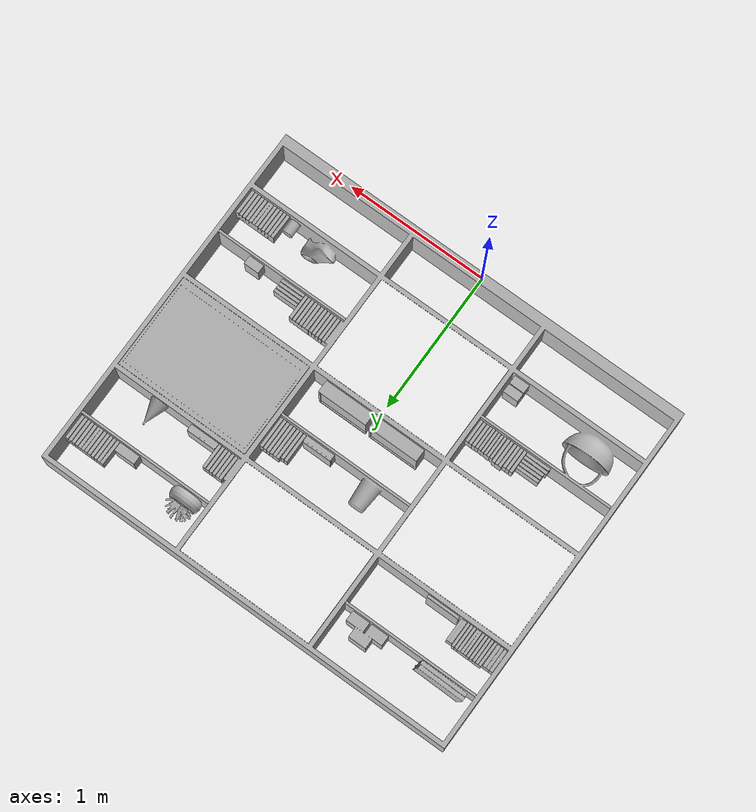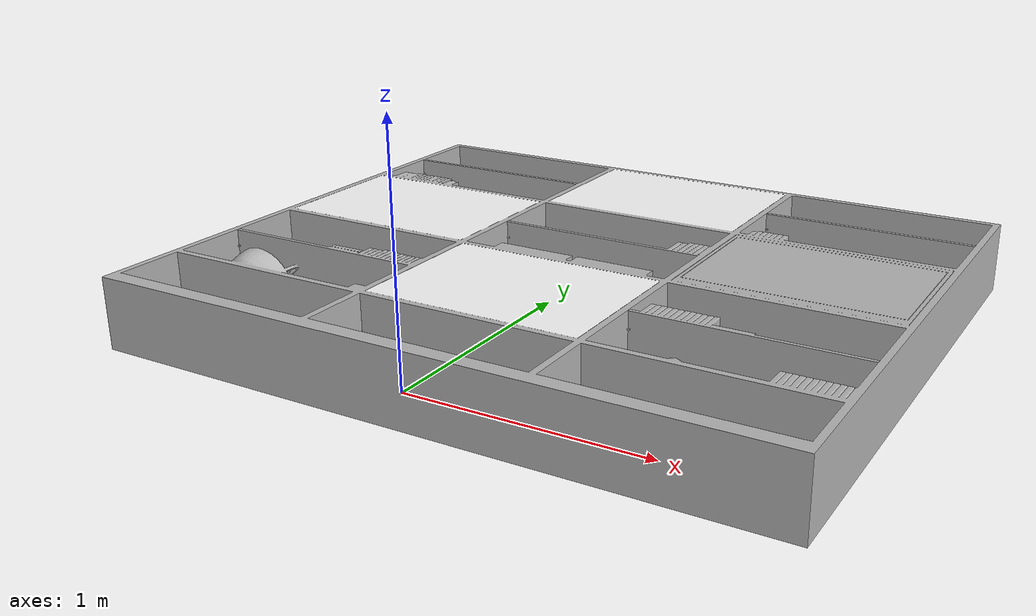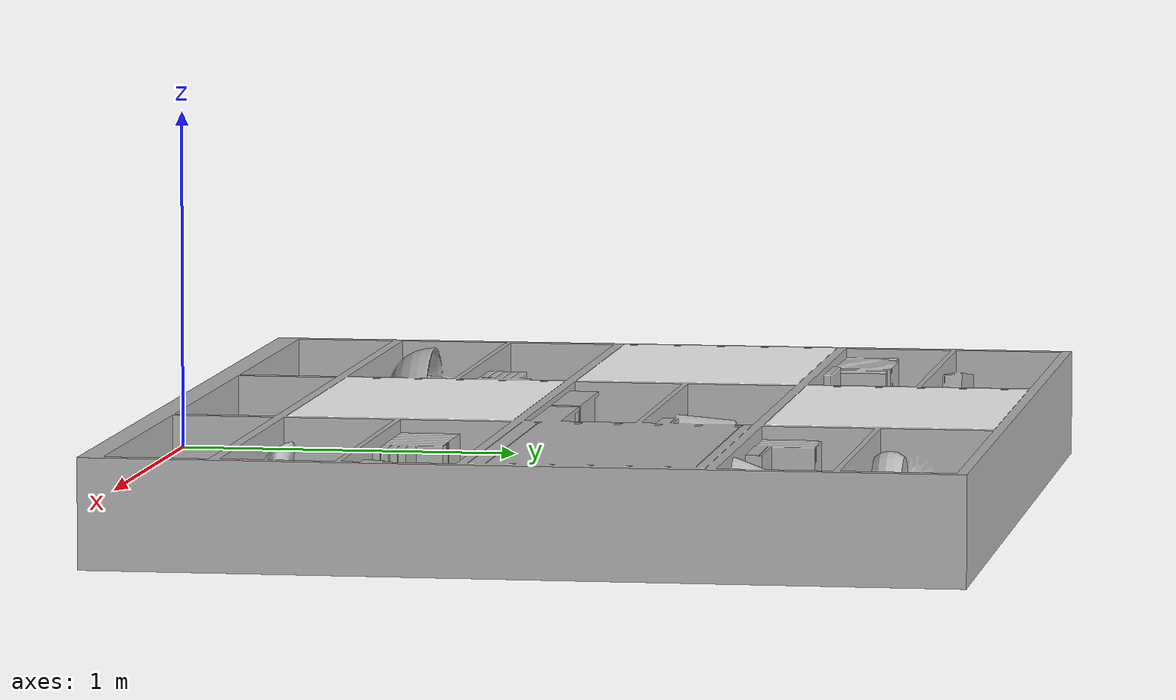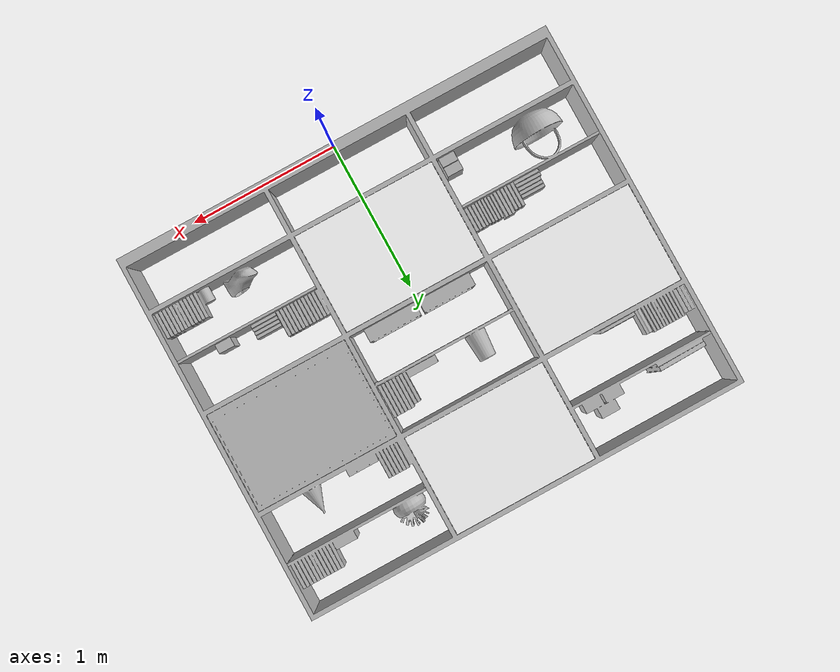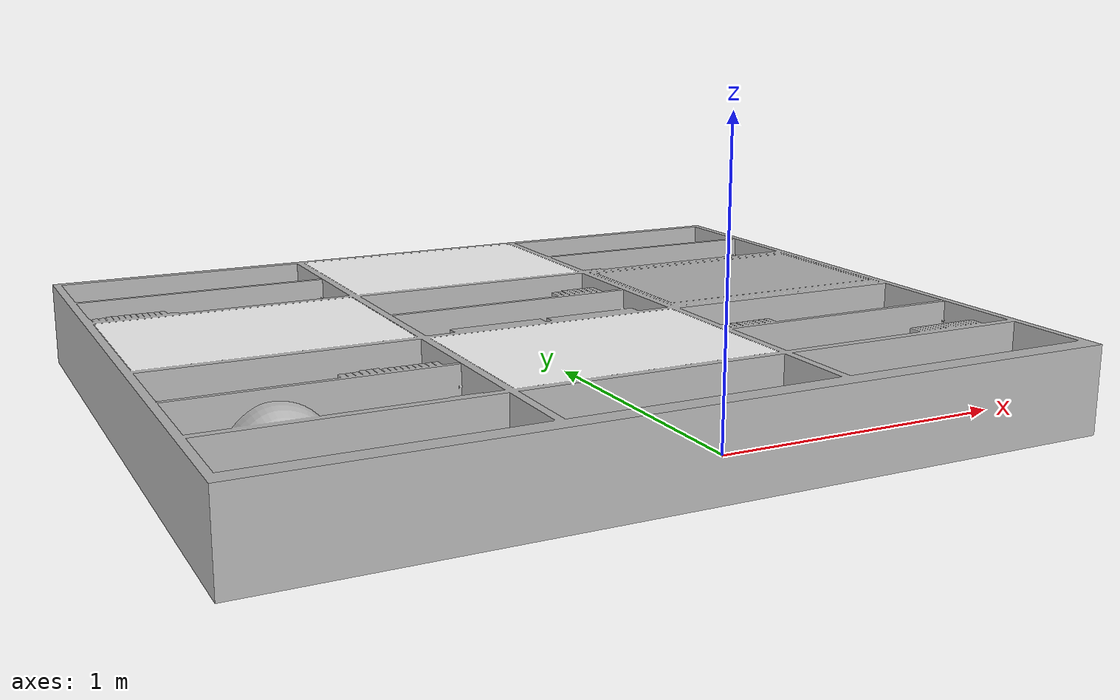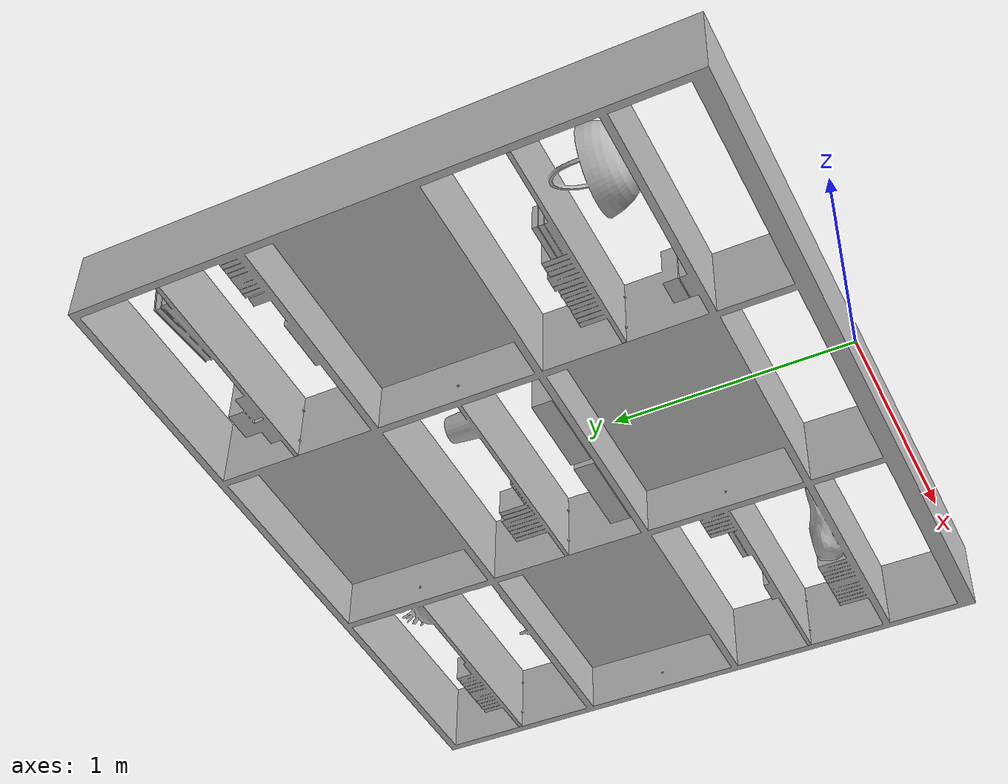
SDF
<?xml version="1.0" ?>
<sdf version="1.4">
<!-- Origin
 x, y: Center of each beam
 z: Bottom
-->
    <model name="bookshelf">
      <static>true</static>
      <link name="body">
        <visual name="visual">
          <geometry>
            <mesh><uri>model://bookshelf/shelf1/shelf1.dae</uri></mesh>
          </geometry>
        </visual>
        <collision name="bookshelf">
          <pose>0 1.22 0 0 0 0</pose>
          <geometry>
            <box>
              <size>3.0 2.44 0.32</size> <!-- Order of this is y, z, x. Not sure if this is correct, but works. -->
            </box>
          </geometry>
          <surface>
            <friction>
              <ode>
                <mu>100</mu>
                <mu2>50</mu2>
              </ode>
            </friction>
          </surface>
        </collision>
      </link>
    </model>
</sdf>
